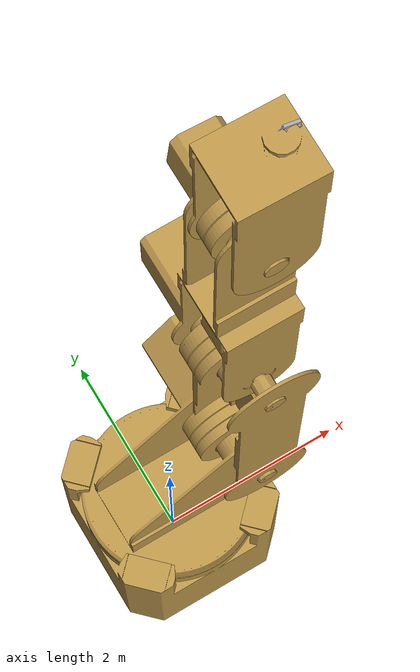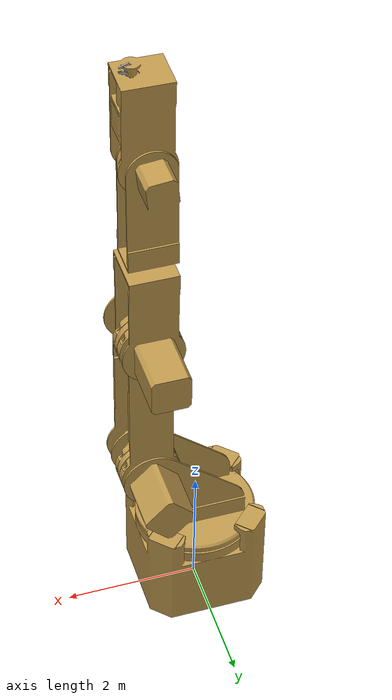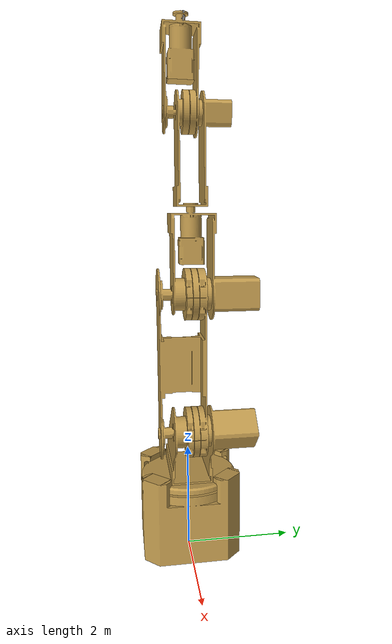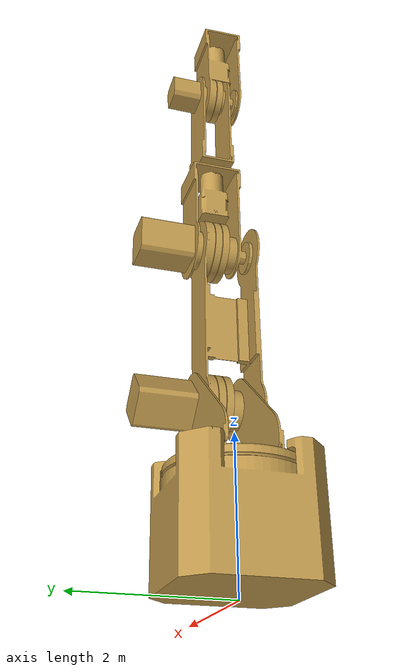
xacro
<?xml version="1.0" encoding="utf-8"?>
<robot xmlns:xacro="http://www.ros.org/wiki/xacro" name="robocol">
  <xacro:include filename="$(find robocol_new_arm)/arm_description/robocol_arm.xacro"/>
  <xacro:include filename="$(find robocol_new_arm)/arm_description/hand.xacro"/>
  <xacro:robocol_arm />
  <xacro:hand ns="robocol" rpy="0 0 ${-pi/4}" connected_to="robocol_link6"/>
</robot>

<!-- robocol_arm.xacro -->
<robot xmlns:xacro="http://www.ros.org/wiki/xacro" name="robocol">
  <xacro:macro name="robocol_arm" params="arm_id:='robocol' description_pkg:='robocol_new_arm' connected_to:='' xyz:='0 0 0' rpy:='0 0 0'">
    <xacro:unless value="${not connected_to}">
      <joint name="${arm_id}_joint_${connected_to}" type="fixed">
        <parent link="${connected_to}"/>
        <child link="${arm_id}_link0"/>
        <origin rpy="${rpy}" xyz="${xyz}"/>
      </joint>
    </xacro:unless>
    <material name="joints_mat">
      <color rgba="0.75 0.6 0.3 1"/>
    </material>
    <link name="${arm_id}_link0">
      <visual>
        <geometry>
          <mesh filename="package://${description_pkg}/meshes/visual/link0.stl" scale="0.1 0.1 0.1"/>
        </geometry>
        <material name="joints_mat"/>
      </visual>
      <collision>
        <geometry>
          <mesh filename="package://${description_pkg}/meshes/collision/link0.stl" scale="0.1 0.1 0.1"/>
        </geometry>
      </collision>
    </link>
    <link name="${arm_id}_link1">
      <visual>
        <geometry>
          <mesh filename="package://${description_pkg}/meshes/visual/link1.stl" scale="0.1 0.1 0.1"/>
        </geometry>
        <material name="joints_mat"/>
      </visual>
      <collision>
        <geometry>
          <mesh filename="package://${description_pkg}/meshes/collision/link1.stl" scale="0.1 0.1 0.1"/>
        </geometry>
      </collision>
    </link>
    <joint name="${arm_id}_joint1" type="revolute">
      <safety_controller k_position="100.0" k_velocity="40.0" soft_lower_limit="-3" soft_upper_limit="3"/>
      <origin rpy="0 0 0" xyz="0 0 1.4"/>
      <parent link="${arm_id}_link0"/>
      <child link="${arm_id}_link1"/>
      <axis xyz="0 0 1"/>
      <limit effort="87" lower="-3" upper="3" velocity="2.1750"/>
    </joint>
    <link name="${arm_id}_link2">
      <visual>
        <geometry>
          <mesh filename="package://${description_pkg}/meshes/visual/link2.stl" scale="0.1 0.1 0.1"/>
        </geometry>
        <material name="joints_mat"/>
      </visual>
      <collision>
        <geometry>
          <mesh filename="package://${description_pkg}/meshes/collision/link2.stl" scale="0.1 0.1 0.1"/>
        </geometry>
      </collision>
    </link>
    <joint name="${arm_id}_joint2" type="revolute">
      <safety_controller k_position="100.0" k_velocity="40.0" soft_lower_limit="-1.7628" soft_upper_limit="2.5"/>
      <origin rpy="0 ${-pi/2} 0" xyz="0.74 -0.55 1.2"/>
      <parent link="${arm_id}_link1"/>
      <child link="${arm_id}_link2"/>
      <axis xyz="0 1 0"/>
      <limit effort="87" lower="-1.7628" upper="2.5" velocity="2.1750"/>
    </joint>
    <link name="${arm_id}_link3">
      <visual>
        <geometry>
          <mesh filename="package://${description_pkg}/meshes/visual/link3.stl" scale="0.1 0.1 0.1"/>
        </geometry>
        <material name="joints_mat"/>
      </visual>
      <collision>
        <geometry>
          <mesh filename="package://${description_pkg}/meshes/collision/link3.stl" scale="0.1 0.1 0.1"/>
        </geometry>
      </collision>
    </link>
    <joint name="${arm_id}_joint3" type="revolute">
      <safety_controller k_position="100.0" k_velocity="40.0" soft_lower_limit="-2.6" soft_upper_limit="2.6"/>
      <origin rpy="0 ${pi/2} 0" xyz="2.5 0 0"/>
      <parent link="${arm_id}_link2"/>
      <child link="${arm_id}_link3"/>
      <axis xyz="0 1 0"/>
      <limit effort="87" lower="-2.6" upper="2.6" velocity="2.1750"/>
    </joint>
    <link name="${arm_id}_link4">
      <visual>
        <geometry>
          <mesh filename="package://${description_pkg}/meshes/visual/link4.stl" scale="0.1 0.1 0.1"/>
        </geometry>
        <material name="joints_mat"/>
      </visual>
      <collision>
        <geometry>
          <mesh filename="package://${description_pkg}/meshes/collision/link4.stl" scale="0.1 0.1 0.1"/>
        </geometry>
      </collision>
    </link>
    <joint name="${arm_id}_joint4" type="revolute">
      <safety_controller k_position="100.0" k_velocity="40.0" soft_lower_limit="-2.5" soft_upper_limit="2.5"/>
      <origin rpy="0 0 ${-pi/2}" xyz="-0.05 0.55 1.5"/>
      <parent link="${arm_id}_link3"/>
      <child link="${arm_id}_link4"/>
      <axis xyz="0 0 1"/>
      <limit effort="87" lower="-2.5" upper="2.5" velocity="2.1750"/>
    </joint>
    <link name="${arm_id}_link5">
      <visual>
        <geometry>
          <mesh filename="package://${description_pkg}/meshes/visual/link5.stl" scale="0.1 0.1 0.1"/>
        </geometry>
        <material name="joints_mat"/>
      </visual>
      <collision>
        <geometry>
          <mesh filename="package://${description_pkg}/meshes/collision/link5.stl" scale="0.1 0.1 0.1"/>
        </geometry>
      </collision>
    </link>
    <joint name="${arm_id}_joint5" type="revolute">
      <safety_controller k_position="100.0" k_velocity="40.0" soft_lower_limit="-2.5" soft_upper_limit="2.5"/>
      <origin rpy="0 0 0" xyz="0.42 0.04 1.53"/>
      <parent link="${arm_id}_link4"/>
      <child link="${arm_id}_link5"/>
      <axis xyz="1 0 0"/>
      <limit effort="12" lower="-2.5" upper="2.5" velocity="2.6100"/>
    </joint>
    <link name="${arm_id}_link6"/>
    <joint name="${arm_id}_joint6" type="revolute">
      <safety_controller k_position="100.0" k_velocity="40.0" soft_lower_limit="-3" soft_upper_limit="3"/>
      <origin rpy="0 0 -0.8" xyz="-0.3 0.1 1.4"/>
      <parent link="${arm_id}_link5"/>
      <child link="${arm_id}_link6"/>
      <axis xyz="0 0 1"/>
      <limit effort="12" lower="-3" upper="3" velocity="2.6100"/>
    </joint>
  </xacro:macro>
</robot>

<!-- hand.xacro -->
<robot xmlns:xacro="http://www.ros.org/wiki/xacro" name="hand">
  <xacro:macro name="hand" params="connected_to:='' ns:='' rpy:='0 0 0' xyz:='0 0 0' ">
    <xacro:unless value="${connected_to == ''}">
      <joint name="${ns}_hand_joint" type="fixed">
        <parent link="${connected_to}"/>
        <child link="${ns}_hand"/>
        <origin xyz="${xyz}" rpy="${rpy}"/>
      </joint>
    </xacro:unless>
    <link name="${ns}_hand">
      <visual>
        <geometry>
          <mesh filename="file:///home/franz/catkin_ws/src/robocol_new_arm/meshes/visual/garra.stl" scale="0.01 0.01 0.01"/>
        </geometry>
      </visual>
    </link>
  </xacro:macro>
</robot>
